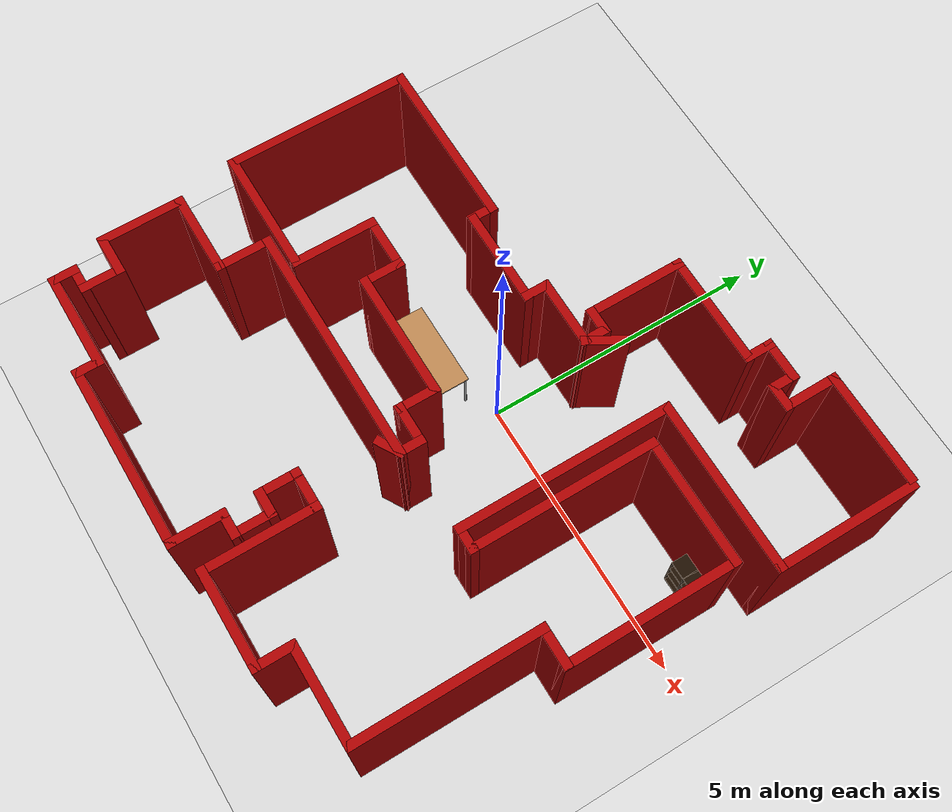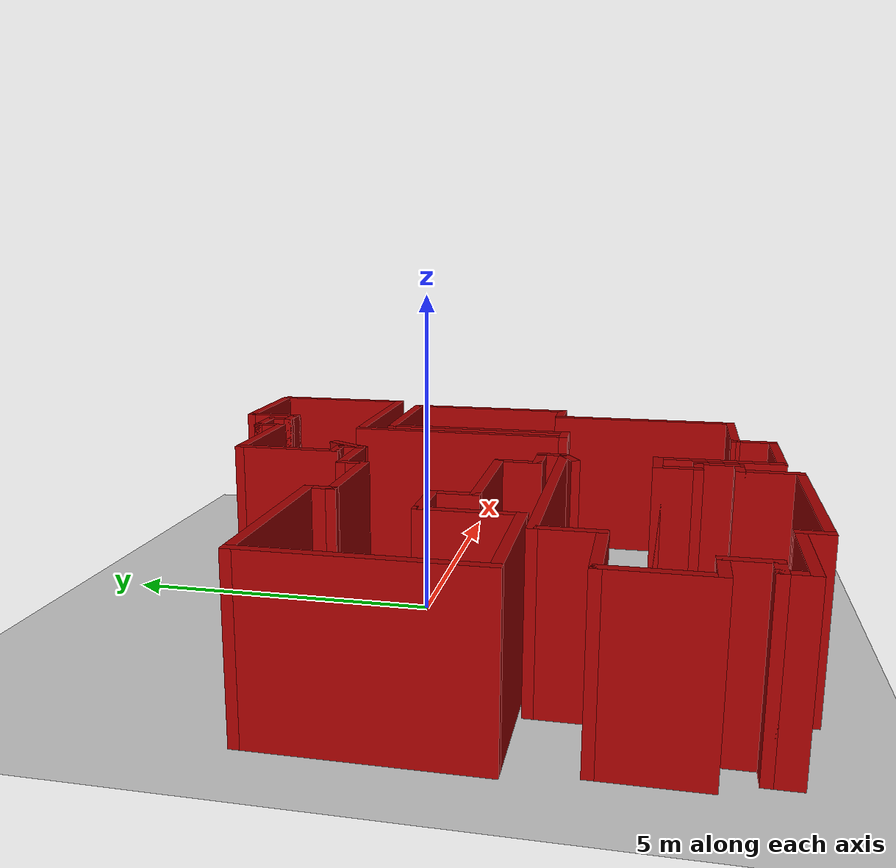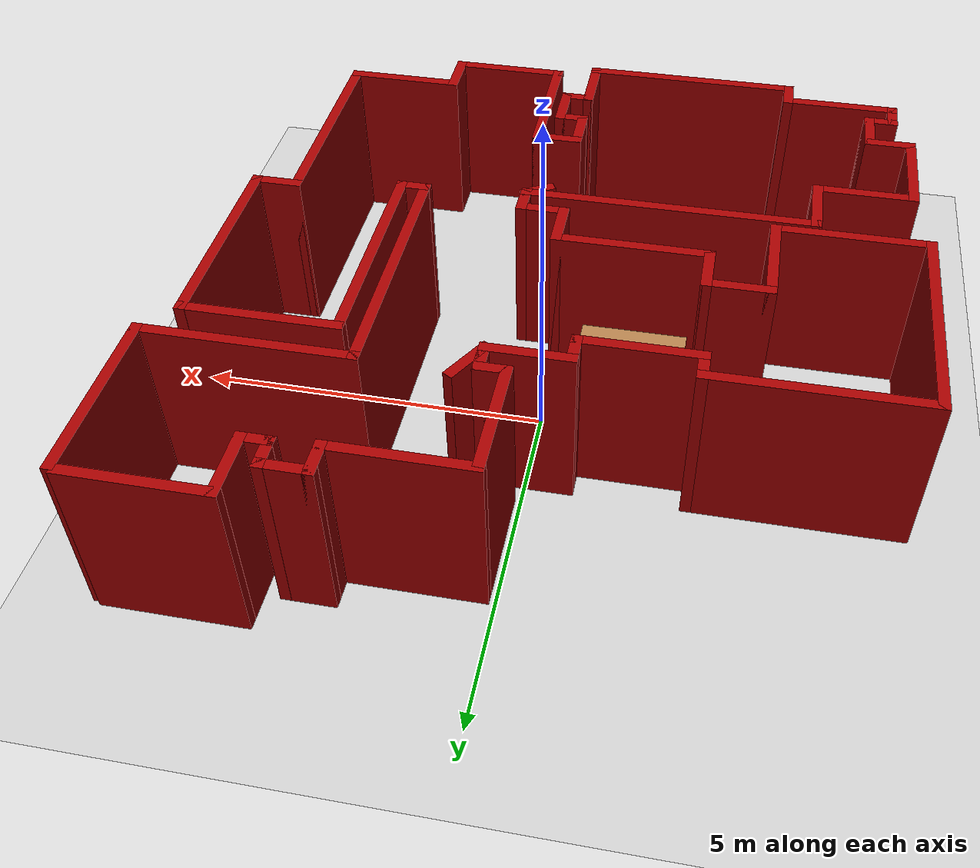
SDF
<sdf version="1.6">
 <world name="default">
  <light name="sun" type="directional">
   <pose>0 0 10 0 -0 0</pose>
   <diffuse>0.8 0.8 0.8 1</diffuse>
   <specular>0.2 0.2 0.2 1</specular>
   <attenuation>
    <range>1000</range>
    <constant>0.9</constant>
    <linear>0.01</linear>
    <quadratic>0.001</quadratic>
   </attenuation>
   <direction>-0.5 0.1 -0.9</direction>
  </light>
  <model name="ground_plane">
   <static>1</static>
   <link name="link">
    <collision name="collision">
     <geometry><plane><normal>0 0 1</normal><size>100 100</size></plane></geometry>
     <surface>
      <contact><collide_bitmask>65535</collide_bitmask></contact>
      <friction><ode><mu>100</mu><mu2>50</mu2></ode></friction>
     </surface>
    </collision>
    <visual name="visual">
     <cast_shadows>0</cast_shadows>
     <geometry><plane><normal>0 0 1</normal><size>100 100</size></plane></geometry>
     <material>
      <script><uri>file://media/materials/scripts/gazebo.material</uri><name>Gazebo/Grey</name></script>
     </material>
    </visual>
   </link>
  </model>
  <gravity>0 0 -9.8</gravity>
  <magnetic_field>6e-06 2.3e-05 -4.2e-05</magnetic_field>
  <atmosphere type="adiabatic"/>
  <physics name="default_physics" default="0" type="ode">
   <max_step_size>0.001</max_step_size>
   <real_time_factor>1</real_time_factor>
   <real_time_update_rate>1000</real_time_update_rate>
  </physics>
  <scene><ambient>0.4 0.4 0.4 1</ambient><background>0.7 0.7 0.7 1</background><shadows>1</shadows></scene>
  <audio><device>default</device></audio>
  <spherical_coordinates>
   <surface_model>EARTH_WGS84</surface_model>
   <latitude_deg>0</latitude_deg>
   <longitude_deg>0</longitude_deg>
   <elevation>0</elevation>
   <heading_deg>0</heading_deg>
  </spherical_coordinates>
  <model name="map_99">
   <pose>-0.07009 -0.765283 0 0 -0 0</pose>
   <link name="Wall_0">
    <collision name="Wall_0_Collision">
     <geometry><box><size>2 0.15 2.5</size></box></geometry>
     <pose>0 0 1.25 0 -0 0</pose>
    </collision>
    <visual name="Wall_0_Visual">
     <pose>0 0 1.25 0 -0 0</pose>
     <geometry><box><size>2 0.15 2.5</size></box></geometry>
     <material>
      <script><uri>file://media/materials/scripts/gazebo.material</uri><name>Gazebo/Grey</name></script>
      <ambient>0.643137 0 0 1</ambient>
     </material>
     <meta><layer>0</layer></meta>
    </visual>
    <pose>3.95 4.82313 0 0 -0 3.14159</pose>
   </link>
   <link name="Wall_1">
    <collision name="Wall_1_Collision">
     <geometry><box><size>1 0.15 2.5</size></box></geometry>
     <pose>0 0 1.25 0 -0 0</pose>
    </collision>
    <visual name="Wall_1_Visual">
     <pose>0 0 1.25 0 -0 0</pose>
     <geometry><box><size>1 0.15 2.5</size></box></geometry>
     <material>
      <script><uri>file://media/materials/scripts/gazebo.material</uri><name>Gazebo/Grey</name></script>
      <ambient>0.643137 0 0 1</ambient>
     </material>
     <meta><layer>0</layer></meta>
    </visual>
    <pose>3.025 4.39813 0 0 -0 -1.5708</pose>
   </link>
   <link name="Wall_10">
    <collision name="Wall_10_Collision">
     <geometry><box><size>2 0.15 2.5</size></box></geometry>
     <pose>0 0 1.25 0 -0 0</pose>
    </collision>
    <visual name="Wall_10_Visual">
     <pose>0 0 1.25 0 -0 0</pose>
     <geometry><box><size>2 0.15 2.5</size></box></geometry>
     <material>
      <script><uri>file://media/materials/scripts/gazebo.material</uri><name>Gazebo/Grey</name></script>
      <ambient>0.643137 0 0 1</ambient>
     </material>
     <meta><layer>0</layer></meta>
    </visual>
    <pose>1.15 3.92687 0 0 -0 3.14159</pose>
   </link>
   <link name="Wall_11">
    <collision name="Wall_11_Collision">
     <geometry><box><size>1.75 0.15 2.5</size></box></geometry>
     <pose>0 0 1.25 0 -0 0</pose>
    </collision>
    <visual name="Wall_11_Visual">
     <pose>0 0 1.25 0 -0 0</pose>
     <geometry><box><size>1.75 0.15 2.5</size></box></geometry>
     <material>
      <script><uri>file://media/materials/scripts/gazebo.material</uri><name>Gazebo/Grey</name></script>
      <ambient>0.643137 0 0 1</ambient>
     </material>
     <meta><layer>0</layer></meta>
    </visual>
    <pose>0.225 3.12687 0 0 -0 -1.5708</pose>
   </link>
   <link name="Wall_12">
    <collision name="Wall_12_Collision">
     <geometry><box><size>0.5 0.15 2.5</size></box></geometry>
     <pose>0 0 1.25 0 -0 0</pose>
    </collision>
    <visual name="Wall_12_Visual">
     <pose>0 0 1.25 0 -0 0</pose>
     <geometry><box><size>0.5 0.15 2.5</size></box></geometry>
     <material>
      <script><uri>file://media/materials/scripts/gazebo.material</uri><name>Gazebo/Grey</name></script>
      <ambient>0.643137 0 0 1</ambient>
     </material>
     <meta><layer>0</layer></meta>
    </visual>
    <pose>0.4 2.32687 0 0 -0 0</pose>
   </link>
   <link name="Wall_15">
    <collision name="Wall_15_Collision">
     <geometry><box><size>0.5 0.15 2.5</size></box></geometry>
     <pose>0 0 1.25 0 -0 0</pose>
    </collision>
    <visual name="Wall_15_Visual">
     <pose>0 0 1.25 0 -0 0</pose>
     <geometry><box><size>0.5 0.15 2.5</size></box></geometry>
     <material>
      <script><uri>file://media/materials/scripts/gazebo.material</uri><name>Gazebo/Grey</name></script>
      <ambient>0.643137 0 0 1</ambient>
     </material>
     <meta><layer>0</layer></meta>
    </visual>
    <pose>0.575 2.15187 0 0 -0 -1.5708</pose>
   </link>
   <link name="Wall_16">
    <collision name="Wall_16_Collision">
     <geometry><box><size>1.25 0.15 2.5</size></box></geometry>
     <pose>0 0 1.25 0 -0 0</pose>
    </collision>
    <visual name="Wall_16_Visual">
     <pose>0 0 1.25 0 -0 0</pose>
     <geometry><box><size>1.25 0.15 2.5</size></box></geometry>
     <material>
      <script><uri>file://media/materials/scripts/gazebo.material</uri><name>Gazebo/Grey</name></script>
      <ambient>0.643137 0 0 1</ambient>
     </material>
     <meta><layer>0</layer></meta>
    </visual>
    <pose>0.025 1.97687 0 0 -0 3.14159</pose>
   </link>
   <link name="Wall_17">
    <collision name="Wall_17_Collision">
     <geometry><box><size>0.5 0.15 2.5</size></box></geometry>
     <pose>0 0 1.25 0 -0 0</pose>
    </collision>
    <visual name="Wall_17_Visual">
     <pose>0 0 1.25 0 -0 0</pose>
     <geometry><box><size>0.5 0.15 2.5</size></box></geometry>
     <material>
      <script><uri>file://media/materials/scripts/gazebo.material</uri><name>Gazebo/Grey</name></script>
      <ambient>0.643137 0 0 1</ambient>
     </material>
     <meta><layer>0</layer></meta>
    </visual>
    <pose>-0.525 1.80187 0 0 -0 -1.5708</pose>
   </link>
   <link name="Wall_18">
    <collision name="Wall_18_Collision">
     <geometry><box><size>1.75 0.15 2.5</size></box></geometry>
     <pose>0 0 1.25 0 -0 0</pose>
    </collision>
    <visual name="Wall_18_Visual">
     <pose>0 0 1.25 0 -0 0</pose>
     <geometry><box><size>1.75 0.15 2.5</size></box></geometry>
     <material>
      <script><uri>file://media/materials/scripts/gazebo.material</uri><name>Gazebo/Grey</name></script>
      <ambient>0.643137 0 0 1</ambient>
     </material>
     <meta><layer>0</layer></meta>
    </visual>
    <pose>-1.325 1.62687 0 0 -0 3.14159</pose>
   </link>
   <link name="Wall_19">
    <collision name="Wall_19_Collision">
     <geometry><box><size>0.5 0.15 2.5</size></box></geometry>
     <pose>0 0 1.25 0 -0 0</pose>
    </collision>
    <visual name="Wall_19_Visual">
     <pose>0 0 1.25 0 -0 0</pose>
     <geometry><box><size>0.5 0.15 2.5</size></box></geometry>
     <material>
      <script><uri>file://media/materials/scripts/gazebo.material</uri><name>Gazebo/Grey</name></script>
      <ambient>0.643137 0 0 1</ambient>
     </material>
     <meta><layer>0</layer></meta>
    </visual>
    <pose>-2.125 1.80187 0 0 -0 1.5708</pose>
   </link>
   <link name="Wall_2">
    <collision name="Wall_2_Collision">
     <geometry><box><size>0.5 0.15 2.5</size></box></geometry>
     <pose>0 0 1.25 0 -0 0</pose>
    </collision>
    <visual name="Wall_2_Visual">
     <pose>0 0 1.25 0 -0 0</pose>
     <geometry><box><size>0.5 0.15 2.5</size></box></geometry>
     <material>
      <script><uri>file://media/materials/scripts/gazebo.material</uri><name>Gazebo/Grey</name></script>
      <ambient>0.643137 0 0 1</ambient>
     </material>
     <meta><layer>0</layer></meta>
    </visual>
    <pose>2.85 3.97313 0 0 -0 3.14159</pose>
   </link>
   <link name="Wall_20">
    <collision name="Wall_20_Collision">
     <geometry><box><size>3 0.15 2.5</size></box></geometry>
     <pose>0 0 1.25 0 -0 0</pose>
    </collision>
    <visual name="Wall_20_Visual">
     <pose>0 0 1.25 0 -0 0</pose>
     <geometry><box><size>3 0.15 2.5</size></box></geometry>
     <material>
      <script><uri>file://media/materials/scripts/gazebo.material</uri><name>Gazebo/Grey</name></script>
      <ambient>0.643137 0 0 1</ambient>
     </material>
     <meta><layer>0</layer></meta>
    </visual>
    <pose>-3.55 1.97687 0 0 -0 3.14159</pose>
   </link>
   <link name="Wall_21">
    <collision name="Wall_21_Collision">
     <geometry><box><size>3.25 0.15 2.5</size></box></geometry>
     <pose>0 0 1.25 0 -0 0</pose>
    </collision>
    <visual name="Wall_21_Visual">
     <pose>0 0 1.25 0 -0 0</pose>
     <geometry><box><size>3.25 0.15 2.5</size></box></geometry>
     <material>
      <script><uri>file://media/materials/scripts/gazebo.material</uri><name>Gazebo/Grey</name></script>
      <ambient>0.643137 0 0 1</ambient>
     </material>
     <meta><layer>0</layer></meta>
    </visual>
    <pose>-4.975 0.426869 0 0 -0 -1.5708</pose>
   </link>
   <link name="Wall_22">
    <collision name="Wall_22_Collision">
     <geometry><box><size>2.25 0.15 2.5</size></box></geometry>
     <pose>0 0 1.25 0 -0 0</pose>
    </collision>
    <visual name="Wall_22_Visual">
     <pose>0 0 1.25 0 -0 0</pose>
     <geometry><box><size>2.25 0.15 2.5</size></box></geometry>
     <material>
      <script><uri>file://media/materials/scripts/gazebo.material</uri><name>Gazebo/Grey</name></script>
      <ambient>0.643137 0 0 1</ambient>
     </material>
     <meta><layer>0</layer></meta>
    </visual>
    <pose>-3.925 -1.12313 0 0 -0 0</pose>
   </link>
   <link name="Wall_23">
    <collision name="Wall_23_Collision">
     <geometry><box><size>1.5 0.15 2.5</size></box></geometry>
     <pose>0 0 1.25 0 -0 0</pose>
    </collision>
    <visual name="Wall_23_Visual">
     <pose>0 0 1.25 0 -0 0</pose>
     <geometry><box><size>1.5 0.15 2.5</size></box></geometry>
     <material>
      <script><uri>file://media/materials/scripts/gazebo.material</uri><name>Gazebo/Grey</name></script>
      <ambient>0.643137 0 0 1</ambient>
     </material>
     <meta><layer>0</layer></meta>
    </visual>
    <pose>-2.875 -0.448131 0 0 -0 1.5708</pose>
   </link>
   <link name="Wall_24">
    <collision name="Wall_24_Collision">
     <geometry><box><size>1 0.15 2.5</size></box></geometry>
     <pose>0 0 1.25 0 -0 0</pose>
    </collision>
    <visual name="Wall_24_Visual">
     <pose>0 0 1.25 0 -0 0</pose>
     <geometry><box><size>1 0.15 2.5</size></box></geometry>
     <material>
      <script><uri>file://media/materials/scripts/gazebo.material</uri><name>Gazebo/Grey</name></script>
      <ambient>0.643137 0 0 1</ambient>
     </material>
     <meta><layer>0</layer></meta>
    </visual>
    <pose>-2.45 0.226869 0 0 -0 0</pose>
   </link>
   <link name="Wall_25">
    <collision name="Wall_25_Collision">
     <geometry><box><size>0.75 0.15 2.5</size></box></geometry>
     <pose>0 0 1.25 0 -0 0</pose>
    </collision>
    <visual name="Wall_25_Visual">
     <pose>0 0 1.25 0 -0 0</pose>
     <geometry><box><size>0.75 0.15 2.5</size></box></geometry>
     <material>
      <script><uri>file://media/materials/scripts/gazebo.material</uri><name>Gazebo/Grey</name></script>
      <ambient>0.643137 0 0 1</ambient>
     </material>
     <meta><layer>0</layer></meta>
    </visual>
    <pose>-2.025 -0.073131 0 0 -0 -1.5708</pose>
   </link>
   <link name="Wall_26">
    <collision name="Wall_26_Collision">
     <geometry><box><size>2.25 0.15 2.5</size></box></geometry>
     <pose>0 0 1.25 0 -0 0</pose>
    </collision>
    <visual name="Wall_26_Visual">
     <pose>0 0 1.25 0 -0 0</pose>
     <geometry><box><size>2.25 0.15 2.5</size></box></geometry>
     <material>
      <script><uri>file://media/materials/scripts/gazebo.material</uri><name>Gazebo/Grey</name></script>
      <ambient>0.643137 0 0 1</ambient>
     </material>
     <meta><layer>0</layer></meta>
    </visual>
    <pose>-0.975 -0.373131 0 0 -0 0</pose>
   </link>
   <link name="Wall_27">
    <collision name="Wall_27_Collision">
     <geometry><box><size>0.75 0.15 2.5</size></box></geometry>
     <pose>0 0 1.25 0 -0 0</pose>
    </collision>
    <visual name="Wall_27_Visual">
     <pose>0 0 1.25 0 -0 0</pose>
     <geometry><box><size>0.75 0.15 2.5</size></box></geometry>
     <material>
      <script><uri>file://media/materials/scripts/gazebo.material</uri><name>Gazebo/Grey</name></script>
      <ambient>0.643137 0 0 1</ambient>
     </material>
     <meta><layer>0</layer></meta>
    </visual>
    <pose>0.075 -0.673131 0 0 -0 -1.5708</pose>
   </link>
   <link name="Wall_28">
    <collision name="Wall_28_Collision">
     <geometry><box><size>0.75 0.15 2.5</size></box></geometry>
     <pose>0 0 1.25 0 -0 0</pose>
    </collision>
    <visual name="Wall_28_Visual">
     <pose>0 0 1.25 0 -0 0</pose>
     <geometry><box><size>0.75 0.15 2.5</size></box></geometry>
     <material>
      <script><uri>file://media/materials/scripts/gazebo.material</uri><name>Gazebo/Grey</name></script>
      <ambient>0.643137 0 0 1</ambient>
     </material>
     <meta><layer>0</layer></meta>
    </visual>
    <pose>0.375 -0.973131 0 0 -0 0</pose>
   </link>
   <link name="Wall_29">
    <collision name="Wall_29_Collision">
     <geometry><box><size>0.5 0.15 2.5</size></box></geometry>
     <pose>0 0 1.25 0 -0 0</pose>
    </collision>
    <visual name="Wall_29_Visual">
     <pose>0 0 1.25 0 -0 0</pose>
     <geometry><box><size>0.5 0.15 2.5</size></box></geometry>
     <material>
      <script><uri>file://media/materials/scripts/gazebo.material</uri><name>Gazebo/Grey</name></script>
      <ambient>0.643137 0 0 1</ambient>
     </material>
     <meta><layer>0</layer></meta>
    </visual>
    <pose>0.675 -1.14813 0 0 -0 -1.5708</pose>
   </link>
   <link name="Wall_3">
    <collision name="Wall_3_Collision">
     <geometry><box><size>0.5 0.15 2.5</size></box></geometry>
     <pose>0 0 1.25 0 -0 0</pose>
    </collision>
    <visual name="Wall_3_Visual">
     <pose>0 0 1.25 0 -0 0</pose>
     <geometry><box><size>0.5 0.15 2.5</size></box></geometry>
     <material>
      <script><uri>file://media/materials/scripts/gazebo.material</uri><name>Gazebo/Grey</name></script>
      <ambient>0.643137 0 0 1</ambient>
     </material>
     <meta><layer>0</layer></meta>
    </visual>
    <pose>2.675 4.14813 0 0 -0 1.5708</pose>
   </link>
   <link name="Wall_30">
    <collision name="Wall_30_Collision">
     <geometry><box><size>4.25 0.15 2.5</size></box></geometry>
     <pose>0 0 1.25 0 -0 0</pose>
    </collision>
    <visual name="Wall_30_Visual">
     <pose>0 0 1.25 0 -0 0</pose>
     <geometry><box><size>4.25 0.15 2.5</size></box></geometry>
     <material>
      <script><uri>file://media/materials/scripts/gazebo.material</uri><name>Gazebo/Grey</name></script>
      <ambient>0.643137 0 0 1</ambient>
     </material>
     <meta><layer>0</layer></meta>
    </visual>
    <pose>-1.375 -1.32313 0 0 -0 3.14159</pose>
   </link>
   <link name="Wall_31">
    <collision name="Wall_31_Collision">
     <geometry><box><size>1 0.15 2.5</size></box></geometry>
     <pose>0 0 1.25 0 -0 0</pose>
    </collision>
    <visual name="Wall_31_Visual">
     <pose>0 0 1.25 0 -0 0</pose>
     <geometry><box><size>1 0.15 2.5</size></box></geometry>
     <material>
      <script><uri>file://media/materials/scripts/gazebo.material</uri><name>Gazebo/Grey</name></script>
      <ambient>0.643137 0 0 1</ambient>
     </material>
     <meta><layer>0</layer></meta>
    </visual>
    <pose>-3.425 -1.74813 0 0 -0 -1.5708</pose>
   </link>
   <link name="Wall_32">
    <collision name="Wall_32_Collision">
     <geometry><box><size>1.5 0.15 2.5</size></box></geometry>
     <pose>0 0 1.25 0 -0 0</pose>
    </collision>
    <visual name="Wall_32_Visual">
     <pose>0 0 1.25 0 -0 0</pose>
     <geometry><box><size>1.5 0.15 2.5</size></box></geometry>
     <material>
      <script><uri>file://media/materials/scripts/gazebo.material</uri><name>Gazebo/Grey</name></script>
      <ambient>0.643137 0 0 1</ambient>
     </material>
     <meta><layer>0</layer></meta>
    </visual>
    <pose>-4.1 -2.17313 0 0 -0 3.14159</pose>
   </link>
   <link name="Wall_33">
    <collision name="Wall_33_Collision">
     <geometry><box><size>1.5 0.15 2.5</size></box></geometry>
     <pose>0 0 1.25 0 -0 0</pose>
    </collision>
    <visual name="Wall_33_Visual">
     <pose>0 0 1.25 0 -0 0</pose>
     <geometry><box><size>1.5 0.15 2.5</size></box></geometry>
     <material>
      <script><uri>file://media/materials/scripts/gazebo.material</uri><name>Gazebo/Grey</name></script>
      <ambient>0.643137 0 0 1</ambient>
     </material>
     <meta><layer>0</layer></meta>
    </visual>
    <pose>-4.775 -2.84813 0 0 -0 -1.5708</pose>
   </link>
   <link name="Wall_34">
    <collision name="Wall_34_Collision">
     <geometry><box><size>0.75 0.15 2.5</size></box></geometry>
     <pose>0 0 1.25 0 -0 0</pose>
    </collision>
    <visual name="Wall_34_Visual">
     <pose>0 0 1.25 0 -0 0</pose>
     <geometry><box><size>0.75 0.15 2.5</size></box></geometry>
     <material>
      <script><uri>file://media/materials/scripts/gazebo.material</uri><name>Gazebo/Grey</name></script>
      <ambient>0.643137 0 0 1</ambient>
     </material>
     <meta><layer>0</layer></meta>
    </visual>
    <pose>-4.475 -3.52313 0 0 -0 0</pose>
   </link>
   <link name="Wall_35">
    <collision name="Wall_35_Collision">
     <geometry><box><size>0.75 0.15 2.5</size></box></geometry>
     <pose>0 0 1.25 0 -0 0</pose>
    </collision>
    <visual name="Wall_35_Visual">
     <pose>0 0 1.25 0 -0 0</pose>
     <geometry><box><size>0.75 0.15 2.5</size></box></geometry>
     <material>
      <script><uri>file://media/materials/scripts/gazebo.material</uri><name>Gazebo/Grey</name></script>
      <ambient>0.643137 0 0 1</ambient>
     </material>
     <meta><layer>0</layer></meta>
    </visual>
    <pose>-4.175 -3.82313 0 0 -0 -1.5708</pose>
   </link>
   <link name="Wall_36">
    <collision name="Wall_36_Collision">
     <geometry><box><size>0.5 0.15 2.5</size></box></geometry>
     <pose>0 0 1.25 0 -0 0</pose>
    </collision>
    <visual name="Wall_36_Visual">
     <pose>0 0 1.25 0 -0 0</pose>
     <geometry><box><size>0.5 0.15 2.5</size></box></geometry>
     <material>
      <script><uri>file://media/materials/scripts/gazebo.material</uri><name>Gazebo/Grey</name></script>
      <ambient>0.643137 0 0 1</ambient>
     </material>
     <meta><layer>0</layer></meta>
    </visual>
    <pose>-4.35 -4.12313 0 0 -0 3.14159</pose>
   </link>
   <link name="Wall_37">
    <collision name="Wall_37_Collision">
     <geometry><box><size>0.5 0.15 2.5</size></box></geometry>
     <pose>0 0 1.25 0 -0 0</pose>
    </collision>
    <visual name="Wall_37_Visual">
     <pose>0 0 1.25 0 -0 0</pose>
     <geometry><box><size>0.5 0.15 2.5</size></box></geometry>
     <material>
      <script><uri>file://media/materials/scripts/gazebo.material</uri><name>Gazebo/Grey</name></script>
      <ambient>0.643137 0 0 1</ambient>
     </material>
     <meta><layer>0</layer></meta>
    </visual>
    <pose>-4.525 -4.29813 0 0 -0 -1.5708</pose>
   </link>
   <link name="Wall_38">
    <collision name="Wall_38_Collision">
     <geometry><box><size>1.75 0.15 2.5</size></box></geometry>
     <pose>0 0 1.25 0 -0 0</pose>
    </collision>
    <visual name="Wall_38_Visual">
     <pose>0 0 1.25 0 -0 0</pose>
     <geometry><box><size>1.75 0.15 2.5</size></box></geometry>
     <material>
      <script><uri>file://media/materials/scripts/gazebo.material</uri><name>Gazebo/Grey</name></script>
      <ambient>0.643137 0 0 1</ambient>
     </material>
     <meta><layer>0</layer></meta>
    </visual>
    <pose>-3.725 -4.47313 0 0 -0 0</pose>
   </link>
   <link name="Wall_39">
    <collision name="Wall_39_Collision">
     <geometry><box><size>0.5 0.15 2.5</size></box></geometry>
     <pose>0 0 1.25 0 -0 0</pose>
    </collision>
    <visual name="Wall_39_Visual">
     <pose>0 0 1.25 0 -0 0</pose>
     <geometry><box><size>0.5 0.15 2.5</size></box></geometry>
     <material>
      <script><uri>file://media/materials/scripts/gazebo.material</uri><name>Gazebo/Grey</name></script>
      <ambient>0.643137 0 0 1</ambient>
     </material>
     <meta><layer>0</layer></meta>
    </visual>
    <pose>-2.925 -4.64813 0 0 -0 -1.5708</pose>
   </link>
   <link name="Wall_4">
    <collision name="Wall_4_Collision">
     <geometry><box><size>0.75 0.15 2.5</size></box></geometry>
     <pose>0 0 1.25 0 -0 0</pose>
    </collision>
    <visual name="Wall_4_Visual">
     <pose>0 0 1.25 0 -0 0</pose>
     <geometry><box><size>0.75 0.15 2.5</size></box></geometry>
     <material>
      <script><uri>file://media/materials/scripts/gazebo.material</uri><name>Gazebo/Grey</name></script>
      <ambient>0.643137 0 0 1</ambient>
     </material>
     <meta><layer>0</layer></meta>
    </visual>
    <pose>2.375 4.32313 0 0 -0 3.14159</pose>
   </link>
   <link name="Wall_40">
    <collision name="Wall_40_Collision">
     <geometry><box><size>3.25 0.15 2.5</size></box></geometry>
     <pose>0 0 1.25 0 -0 0</pose>
    </collision>
    <visual name="Wall_40_Visual">
     <pose>0 0 1.25 0 -0 0</pose>
     <geometry><box><size>3.25 0.15 2.5</size></box></geometry>
     <material>
      <script><uri>file://media/materials/scripts/gazebo.material</uri><name>Gazebo/Grey</name></script>
      <ambient>0.643137 0 0 1</ambient>
     </material>
     <meta><layer>0</layer></meta>
    </visual>
    <pose>-1.375 -4.82313 0 0 -0 0</pose>
   </link>
   <link name="Wall_41">
    <collision name="Wall_41_Collision">
     <geometry><box><size>1 0.15 2.5</size></box></geometry>
     <pose>0 0 1.25 0 -0 0</pose>
    </collision>
    <visual name="Wall_41_Visual">
     <pose>0 0 1.25 0 -0 0</pose>
     <geometry><box><size>1 0.15 2.5</size></box></geometry>
     <material>
      <script><uri>file://media/materials/scripts/gazebo.material</uri><name>Gazebo/Grey</name></script>
      <ambient>0.643137 0 0 1</ambient>
     </material>
     <meta><layer>0</layer></meta>
    </visual>
    <pose>0.175 -4.39813 0 0 -0 1.5708</pose>
   </link>
   <link name="Wall_42">
    <collision name="Wall_42_Collision">
     <geometry><box><size>0.5 0.15 2.5</size></box></geometry>
     <pose>0 0 1.25 0 -0 0</pose>
    </collision>
    <visual name="Wall_42_Visual">
     <pose>0 0 1.25 0 -0 0</pose>
     <geometry><box><size>0.5 0.15 2.5</size></box></geometry>
     <material>
      <script><uri>file://media/materials/scripts/gazebo.material</uri><name>Gazebo/Grey</name></script>
      <ambient>0.643137 0 0 1</ambient>
     </material>
     <meta><layer>0</layer></meta>
    </visual>
    <pose>0.35 -3.97313 0 0 -0 0</pose>
   </link>
   <link name="Wall_43">
    <collision name="Wall_43_Collision">
     <geometry><box><size>0.75 0.15 2.5</size></box></geometry>
     <pose>0 0 1.25 0 -0 0</pose>
    </collision>
    <visual name="Wall_43_Visual">
     <pose>0 0 1.25 0 -0 0</pose>
     <geometry><box><size>0.75 0.15 2.5</size></box></geometry>
     <material>
      <script><uri>file://media/materials/scripts/gazebo.material</uri><name>Gazebo/Grey</name></script>
      <ambient>0.643137 0 0 1</ambient>
     </material>
     <meta><layer>0</layer></meta>
    </visual>
    <pose>0.525 -3.67313 0 0 -0 1.5708</pose>
   </link>
   <link name="Wall_44">
    <collision name="Wall_44_Collision">
     <geometry><box><size>0.5 0.15 2.5</size></box></geometry>
     <pose>0 0 1.25 0 -0 0</pose>
    </collision>
    <visual name="Wall_44_Visual">
     <pose>0 0 1.25 0 -0 0</pose>
     <geometry><box><size>0.5 0.15 2.5</size></box></geometry>
     <material>
      <script><uri>file://media/materials/scripts/gazebo.material</uri><name>Gazebo/Grey</name></script>
      <ambient>0.643137 0 0 1</ambient>
     </material>
     <meta><layer>0</layer></meta>
    </visual>
    <pose>0.35 -3.37313 0 0 -0 3.14159</pose>
   </link>
   <link name="Wall_45">
    <collision name="Wall_45_Collision">
     <geometry><box><size>0.75 0.15 2.5</size></box></geometry>
     <pose>0 0 1.25 0 -0 0</pose>
    </collision>
    <visual name="Wall_45_Visual">
     <pose>0 0 1.25 0 -0 0</pose>
     <geometry><box><size>0.75 0.15 2.5</size></box></geometry>
     <material>
      <script><uri>file://media/materials/scripts/gazebo.material</uri><name>Gazebo/Grey</name></script>
      <ambient>0.643137 0 0 1</ambient>
     </material>
     <meta><layer>0</layer></meta>
    </visual>
    <pose>0.175 -3.07313 0 0 -0 1.5708</pose>
   </link>
   <link name="Wall_46">
    <collision name="Wall_46_Collision">
     <geometry><box><size>0.75 0.15 2.5</size></box></geometry>
     <pose>0 0 1.25 0 -0 0</pose>
    </collision>
    <visual name="Wall_46_Visual">
     <pose>0 0 1.25 0 -0 0</pose>
     <geometry><box><size>0.75 0.15 2.5</size></box></geometry>
     <material>
      <script><uri>file://media/materials/scripts/gazebo.material</uri><name>Gazebo/Grey</name></script>
      <ambient>0.643137 0 0 1</ambient>
     </material>
     <meta><layer>0</layer></meta>
    </visual>
    <pose>0.475 -2.77313 0 0 -0 0</pose>
   </link>
   <link name="Wall_47">
    <collision name="Wall_47_Collision">
     <geometry><box><size>2 0.15 2.5</size></box></geometry>
     <pose>0 0 1.25 0 -0 0</pose>
    </collision>
    <visual name="Wall_47_Visual">
     <pose>0 0 1.25 0 -0 0</pose>
     <geometry><box><size>2 0.15 2.5</size></box></geometry>
     <material>
      <script><uri>file://media/materials/scripts/gazebo.material</uri><name>Gazebo/Grey</name></script>
      <ambient>0.643137 0 0 1</ambient>
     </material>
     <meta><layer>0</layer></meta>
    </visual>
    <pose>0.775 -3.69813 0 0 -0 -1.5708</pose>
   </link>
   <link name="Wall_48">
    <collision name="Wall_48_Collision">
     <geometry><box><size>1.75 0.15 2.5</size></box></geometry>
     <pose>0 0 1.25 0 -0 0</pose>
    </collision>
    <visual name="Wall_48_Visual">
     <pose>0 0 1.25 0 -0 0</pose>
     <geometry><box><size>1.75 0.15 2.5</size></box></geometry>
     <material>
      <script><uri>file://media/materials/scripts/gazebo.material</uri><name>Gazebo/Grey</name></script>
      <ambient>0.643137 0 0 1</ambient>
     </material>
     <meta><layer>0</layer></meta>
    </visual>
    <pose>1.575 -4.62313 0 0 -0 0</pose>
   </link>
   <link name="Wall_49">
    <collision name="Wall_49_Collision">
     <geometry><box><size>0.75 0.15 2.5</size></box></geometry>
     <pose>0 0 1.25 0 -0 0</pose>
    </collision>
    <visual name="Wall_49_Visual">
     <pose>0 0 1.25 0 -0 0</pose>
     <geometry><box><size>0.75 0.15 2.5</size></box></geometry>
     <material>
      <script><uri>file://media/materials/scripts/gazebo.material</uri><name>Gazebo/Grey</name></script>
      <ambient>0.643137 0 0 1</ambient>
     </material>
     <meta><layer>0</layer></meta>
    </visual>
    <pose>2.375 -4.32313 0 0 -0 1.5708</pose>
   </link>
   <link name="Wall_5">
    <collision name="Wall_5_Collision">
     <geometry><box><size>0.546261 0.15 2.5</size></box></geometry>
     <pose>0 0 1.25 0 -0 0</pose>
    </collision>
    <visual name="Wall_5_Visual">
     <pose>0 0 1.25 0 -0 0</pose>
     <geometry><box><size>0.546261 0.15 2.5</size></box></geometry>
     <material>
      <script><uri>file://media/materials/scripts/gazebo.material</uri><name>Gazebo/Grey</name></script>
      <ambient>0.643137 0 0 1</ambient>
     </material>
     <meta><layer>0</layer></meta>
    </visual>
    <pose>2.075 4.125 0 0 -0 -1.5708</pose>
   </link>
   <link name="Wall_53">
    <collision name="Wall_53_Collision">
     <geometry><box><size>1.75 0.15 2.5</size></box></geometry>
     <pose>0 0 1.25 0 -0 0</pose>
    </collision>
    <visual name="Wall_53_Visual">
     <pose>0 0 1.25 0 -0 0</pose>
     <geometry><box><size>1.75 0.15 2.5</size></box></geometry>
     <material>
      <script><uri>file://media/materials/scripts/gazebo.material</uri><name>Gazebo/Grey</name></script>
      <ambient>0.643137 0 0 1</ambient>
     </material>
     <meta><layer>0</layer></meta>
    </visual>
    <pose>3.175 -4.02313 0 0 -0 0</pose>
   </link>
   <link name="Wall_54">
    <collision name="Wall_54_Collision">
     <geometry><box><size>3.25 0.15 2.5</size></box></geometry>
     <pose>0 0 1.25 0 -0 0</pose>
    </collision>
    <visual name="Wall_54_Visual">
     <pose>0 0 1.25 0 -0 0</pose>
     <geometry><box><size>3.25 0.15 2.5</size></box></geometry>
     <material>
      <script><uri>file://media/materials/scripts/gazebo.material</uri><name>Gazebo/Grey</name></script>
      <ambient>0.643137 0 0 1</ambient>
     </material>
     <meta><layer>0</layer></meta>
    </visual>
    <pose>3.975 -2.47313 0 0 -0 1.5708</pose>
   </link>
   <link name="Wall_55">
    <collision name="Wall_55_Collision">
     <geometry><box><size>0.75 0.15 2.5</size></box></geometry>
     <pose>0 0 1.25 0 -0 0</pose>
    </collision>
    <visual name="Wall_55_Visual">
     <pose>0 0 1.25 0 -0 0</pose>
     <geometry><box><size>0.75 0.15 2.5</size></box></geometry>
     <material>
      <script><uri>file://media/materials/scripts/gazebo.material</uri><name>Gazebo/Grey</name></script>
      <ambient>0.643137 0 0 1</ambient>
     </material>
     <meta><layer>0</layer></meta>
    </visual>
    <pose>4.275 -0.923131 0 0 -0 0</pose>
   </link>
   <link name="Wall_56">
    <collision name="Wall_56_Collision">
     <geometry><box><size>3 0.15 2.5</size></box></geometry>
     <pose>0 0 1.25 0 -0 0</pose>
    </collision>
    <visual name="Wall_56_Visual">
     <pose>0 0 1.25 0 -0 0</pose>
     <geometry><box><size>3 0.15 2.5</size></box></geometry>
     <material>
      <script><uri>file://media/materials/scripts/gazebo.material</uri><name>Gazebo/Grey</name></script>
      <ambient>0.643137 0 0 1</ambient>
     </material>
     <meta><layer>0</layer></meta>
    </visual>
    <pose>4.575 0.501869 0 0 -0 1.5708</pose>
   </link>
   <link name="Wall_57">
    <collision name="Wall_57_Collision">
     <geometry><box><size>2.25 0.15 2.5</size></box></geometry>
     <pose>0 0 1.25 0 -0 0</pose>
    </collision>
    <visual name="Wall_57_Visual">
     <pose>0 0 1.25 0 -0 0</pose>
     <geometry><box><size>2.25 0.15 2.5</size></box></geometry>
     <material>
      <script><uri>file://media/materials/scripts/gazebo.material</uri><name>Gazebo/Grey</name></script>
      <ambient>0.643137 0 0 1</ambient>
     </material>
     <meta><layer>0</layer></meta>
    </visual>
    <pose>3.525 1.92687 0 0 -0 3.14159</pose>
   </link>
   <link name="Wall_58">
    <collision name="Wall_58_Collision">
     <geometry><box><size>3.25 0.15 2.5</size></box></geometry>
     <pose>0 0 1.25 0 -0 0</pose>
    </collision>
    <visual name="Wall_58_Visual">
     <pose>0 0 1.25 0 -0 0</pose>
     <geometry><box><size>3.25 0.15 2.5</size></box></geometry>
     <material>
      <script><uri>file://media/materials/scripts/gazebo.material</uri><name>Gazebo/Grey</name></script>
      <ambient>0.643137 0 0 1</ambient>
     </material>
     <meta><layer>0</layer></meta>
    </visual>
    <pose>2.475 0.376869 0 0 -0 -1.5708</pose>
   </link>
   <link name="Wall_59">
    <collision name="Wall_59_Collision">
     <geometry><box><size>0.5 0.15 2.5</size></box></geometry>
     <pose>0 0 1.25 0 -0 0</pose>
    </collision>
    <visual name="Wall_59_Visual">
     <pose>0 0 1.25 0 -0 0</pose>
     <geometry><box><size>0.5 0.15 2.5</size></box></geometry>
     <material>
      <script><uri>file://media/materials/scripts/gazebo.material</uri><name>Gazebo/Grey</name></script>
      <ambient>0.643137 0 0 1</ambient>
     </material>
     <meta><layer>0</layer></meta>
    </visual>
    <pose>2.3 -1.17313 0 0 -0 3.14159</pose>
   </link>
   <link name="Wall_60">
    <collision name="Wall_60_Collision">
     <geometry><box><size>3.75 0.15 2.5</size></box></geometry>
     <pose>0 0 1.25 0 -0 0</pose>
    </collision>
    <visual name="Wall_60_Visual">
     <pose>0 0 1.25 0 -0 0</pose>
     <geometry><box><size>3.75 0.15 2.5</size></box></geometry>
     <material>
      <script><uri>file://media/materials/scripts/gazebo.material</uri><name>Gazebo/Grey</name></script>
      <ambient>0.643137 0 0 1</ambient>
     </material>
     <meta><layer>0</layer></meta>
    </visual>
    <pose>2.125 0.626869 0 0 -0 1.5708</pose>
   </link>
   <link name="Wall_61">
    <collision name="Wall_61_Collision">
     <geometry><box><size>3 0.15 2.5</size></box></geometry>
     <pose>0 0 1.25 0 -0 0</pose>
    </collision>
    <visual name="Wall_61_Visual">
     <pose>0 0 1.25 0 -0 0</pose>
     <geometry><box><size>3 0.15 2.5</size></box></geometry>
     <material>
      <script><uri>file://media/materials/scripts/gazebo.material</uri><name>Gazebo/Grey</name></script>
      <ambient>0.643137 0 0 1</ambient>
     </material>
     <meta><layer>0</layer></meta>
    </visual>
    <pose>3.55 2.42687 0 0 -0 0</pose>
   </link>
   <link name="Wall_62">
    <collision name="Wall_62_Collision">
     <geometry><box><size>2.5 0.15 2.5</size></box></geometry>
     <pose>0 0 1.25 0 -0 0</pose>
    </collision>
    <visual name="Wall_62_Visual">
     <pose>0 0 1.25 0 -0 0</pose>
     <geometry><box><size>2.5 0.15 2.5</size></box></geometry>
     <material>
      <script><uri>file://media/materials/scripts/gazebo.material</uri><name>Gazebo/Grey</name></script>
      <ambient>0.643137 0 0 1</ambient>
     </material>
     <meta><layer>0</layer></meta>
    </visual>
    <pose>4.975 3.60187 0 0 -0 1.5708</pose>
   </link>
   <link name="Wall_64">
    <collision name="Wall_64_Collision">
     <geometry><box><size>0.75 0.15 2.5</size></box></geometry>
     <pose>0 0 1.25 0 -0 0</pose>
    </collision>
    <visual name="Wall_64_Visual">
     <pose>0 0 1.25 0 -0 0</pose>
     <geometry><box><size>0.75 0.15 2.5</size></box></geometry>
     <material>
      <script><uri>file://media/materials/scripts/gazebo.material</uri><name>Gazebo/Grey</name></script>
      <ambient>0.643137 0 0 1</ambient>
     </material>
     <meta><layer>0</layer></meta>
    </visual>
    <pose>0.725 2.23668 0 0 -0 1.0472</pose>
   </link>
   <link name="Wall_66">
    <collision name="Wall_66_Collision">
     <geometry><box><size>0.5 0.15 2.5</size></box></geometry>
     <pose>0 0 1.25 0 -0 0</pose>
    </collision>
    <visual name="Wall_66_Visual">
     <pose>0 0 1.25 0 -0 0</pose>
     <geometry><box><size>0.5 0.15 2.5</size></box></geometry>
     <material>
      <script><uri>file://media/materials/scripts/gazebo.material</uri><name>Gazebo/Grey</name></script>
      <ambient>0.643137 0 0 1</ambient>
     </material>
     <meta><layer>0</layer></meta>
    </visual>
    <pose>0.523446 -1.41063 0 0 -0 -2.61799</pose>
   </link>
   <static>1</static>
  </model>
  <model name="6_Cube_StorageE">
   <link name="Wall_0">
    <pose>0 0 0.01 0 -0 0</pose>
    <inertial>
     <mass>1.6201</mass>
     <inertia><ixx>0.0119</ixx><iyy>0.0631</iyy><izz>0.0513</izz><ixy>0</ixy><ixz>0</ixz><iyz>0</iyz></inertia>
    </inertial>
    <collision name="Wall_0_Collision"><geometry><box><size>0.616 0.296 0.02</size></box></geometry></collision>
    <visual name="Wall_0_Visual">
     <geometry><box><size>0.616 0.296 0.02</size></box></geometry>
     <material>
      <script><uri>file://media/materials/scripts/gazebo.material</uri><name>Gazebo/Grey</name></script>
      <ambient>0.105882 0.0509804 0 1</ambient>
     </material>
    </visual>
   </link>
   <joint name="0_2" type="fixed">
    <pose>-0.308 0 0 0 -0 0</pose>
    <parent>Wall_2</parent>
    <child>Wall_0</child>
    <axis>
     <xyz>1 0 0</xyz>
     <use_parent_model_frame>0</use_parent_model_frame>
     <limit><lower>-1e+16</lower><upper>1e+16</upper></limit>
    </axis>
   </joint>
   <joint name="0_12" type="fixed">
    <parent>Wall_12</parent>
    <child>Wall_0</child>
    <axis>
     <xyz>0 0 1</xyz>
     <use_parent_model_frame>0</use_parent_model_frame>
     <limit><lower>-1e+16</lower><upper>1e+16</upper></limit>
    </axis>
   </joint>
   <joint name="0_4" type="fixed">
    <pose>0.308 0 0 0 -0 0</pose>
    <parent>Wall_4</parent>
    <child>Wall_0</child>
    <axis>
     <xyz>1 0 0</xyz>
     <use_parent_model_frame>0</use_parent_model_frame>
     <limit><lower>-1e+16</lower><upper>1e+16</upper></limit>
    </axis>
   </joint>
   <link name="Wall_10">
    <pose>0 0 0.61 0 -0 0</pose>
    <inertial>
     <mass>1.6201</mass>
     <inertia><ixx>0.0119</ixx><iyy>0.0631</iyy><izz>0.0513</izz><ixy>0</ixy><ixz>0</ixz><iyz>0</iyz></inertia>
    </inertial>
    <collision name="Wall_10_Collision"><geometry><box><size>0.616 0.296 0.02</size></box></geometry></collision>
    <visual name="Wall_10_Visual">
     <geometry><box><size>0.616 0.296 0.02</size></box></geometry>
     <material>
      <script><uri>file://media/materials/scripts/gazebo.material</uri><name>Gazebo/Grey</name></script>
      <ambient>0.105882 0.0509804 0 1</ambient>
     </material>
    </visual>
   </link>
   <joint name="10_2" type="fixed">
    <pose>-0.308 0 0 0 -0 0</pose>
    <parent>Wall_2</parent>
    <child>Wall_10</child>
    <axis>
     <xyz>1 0 0</xyz>
     <use_parent_model_frame>0</use_parent_model_frame>
     <limit><lower>-1e+16</lower><upper>1e+16</upper></limit>
    </axis>
   </joint>
   <joint name="10_12" type="fixed">
    <parent>Wall_12</parent>
    <child>Wall_10</child>
    <axis>
     <xyz>0 0 1</xyz>
     <use_parent_model_frame>0</use_parent_model_frame>
     <limit><lower>-1e+16</lower><upper>1e+16</upper></limit>
    </axis>
   </joint>
   <joint name="10_4" type="fixed">
    <pose>0.308 0 0 0 -0 0</pose>
    <parent>Wall_4</parent>
    <child>Wall_10</child>
    <axis>
     <xyz>1 0 0</xyz>
     <use_parent_model_frame>0</use_parent_model_frame>
     <limit><lower>-1e+16</lower><upper>1e+16</upper></limit>
    </axis>
   </joint>
   <link name="Wall_12">
    <pose>0 0 0.4575 0 -0 0</pose>
    <inertial>
     <mass>2.4065</mass>
     <inertia><ixx>0.0177</ixx><iyy>0.1855</iyy><izz>0.168</izz><ixy>0</ixy><ixz>0</ixz><iyz>0</iyz></inertia>
    </inertial>
    <collision name="Wall_12_Collision"><geometry><box><size>0.02 0.296 0.915</size></box></geometry></collision>
    <visual name="Wall_12_Visual">
     <geometry><box><size>0.02 0.296 0.915</size></box></geometry>
     <material>
      <script><uri>file://media/materials/scripts/gazebo.material</uri><name>Gazebo/Grey</name></script>
      <ambient>0.105882 0.0509804 0 1</ambient>
     </material>
    </visual>
   </link>
   <link name="Wall_2">
    <pose>-0.298 0 0.4575 0 -0 0</pose>
    <inertial>
     <mass>2.4065</mass>
     <inertia><ixx>0.0177</ixx><iyy>0.1855</iyy><izz>0.168</izz><ixy>0</ixy><ixz>0</ixz><iyz>0</iyz></inertia>
    </inertial>
    <collision name="Wall_2_Collision"><geometry><box><size>0.02 0.296 0.915</size></box></geometry></collision>
    <visual name="Wall_2_Visual">
     <geometry><box><size>0.02 0.296 0.915</size></box></geometry>
     <material>
      <script><uri>file://media/materials/scripts/gazebo.material</uri><name>Gazebo/Grey</name></script>
      <ambient>0.105882 0.0509804 0 1</ambient>
     </material>
    </visual>
   </link>
   <link name="Wall_4">
    <pose>0.298 0 0.4575 0 -0 0</pose>
    <inertial>
     <mass>2.4065</mass>
     <inertia><ixx>0.0177</ixx><iyy>0.1855</iyy><izz>0.168</izz><ixy>0</ixy><ixz>0</ixz><iyz>0</iyz></inertia>
    </inertial>
    <collision name="Wall_4_Collision"><geometry><box><size>0.02 0.296 0.915</size></box></geometry></collision>
    <visual name="Wall_4_Visual">
     <geometry><box><size>0.02 0.296 0.915</size></box></geometry>
     <material>
      <script><uri>file://media/materials/scripts/gazebo.material</uri><name>Gazebo/Grey</name></script>
      <ambient>0.105882 0.0509804 0 1</ambient>
     </material>
    </visual>
   </link>
   <link name="Wall_6">
    <pose>0 0 0.905 0 -0 0</pose>
    <inertial>
     <mass>1.6201</mass>
     <inertia><ixx>0.0119</ixx><iyy>0.0631</iyy><izz>0.0513</izz><ixy>0</ixy><ixz>0</ixz><iyz>0</iyz></inertia>
    </inertial>
    <collision name="Wall_6_Collision"><geometry><box><size>0.616 0.296 0.02</size></box></geometry></collision>
    <visual name="Wall_6_Visual">
     <geometry><box><size>0.616 0.296 0.02</size></box></geometry>
     <material>
      <script><uri>file://media/materials/scripts/gazebo.material</uri><name>Gazebo/Grey</name></script>
      <ambient>0.105882 0.0509804 0 1</ambient>
     </material>
    </visual>
   </link>
   <joint name="6_2" type="fixed">
    <pose>-0.308 0 0 0 -0 0</pose>
    <parent>Wall_2</parent>
    <child>Wall_6</child>
    <axis>
     <xyz>2 0 0</xyz>
     <use_parent_model_frame>0</use_parent_model_frame>
     <limit><lower>-1e+16</lower><upper>1e+16</upper></limit>
    </axis>
   </joint>
   <joint name="6_12" type="fixed">
    <parent>Wall_12</parent>
    <child>Wall_6</child>
    <axis>
     <xyz>0 0 1</xyz>
     <use_parent_model_frame>0</use_parent_model_frame>
     <limit><lower>-1e+16</lower><upper>1e+16</upper></limit>
    </axis>
   </joint>
   <joint name="6_4" type="fixed">
    <pose>0.308 0 0 0 -0 0</pose>
    <parent>Wall_4</parent>
    <child>Wall_6</child>
    <axis>
     <xyz>1 0 0</xyz>
     <use_parent_model_frame>0</use_parent_model_frame>
     <limit><lower>-1e+16</lower><upper>1e+16</upper></limit>
    </axis>
   </joint>
   <link name="Wall_8">
    <pose>0 0 0.305 0 -0 0</pose>
    <inertial>
     <mass>1.6201</mass>
     <inertia><ixx>0.0119</ixx><iyy>0.0631</iyy><izz>0.0513</izz><ixy>0</ixy><ixz>0</ixz><iyz>0</iyz></inertia>
    </inertial>
    <collision name="Wall_8_Collision"><geometry><box><size>0.616 0.296 0.02</size></box></geometry></collision>
    <visual name="Wall_8_Visual">
     <geometry><box><size>0.616 0.296 0.02</size></box></geometry>
     <material>
      <script><uri>file://media/materials/scripts/gazebo.material</uri><name>Gazebo/Grey</name></script>
      <ambient>0.105882 0.0509804 0 1</ambient>
     </material>
    </visual>
   </link>
   <joint name="8_2" type="fixed">
    <pose>-0.308 0 0 0 -0 0</pose>
    <parent>Wall_2</parent>
    <child>Wall_8</child>
    <axis>
     <xyz>1 0 0</xyz>
     <use_parent_model_frame>0</use_parent_model_frame>
     <limit><lower>-1e+16</lower><upper>1e+16</upper></limit>
    </axis>
   </joint>
   <joint name="8_12" type="fixed">
    <parent>Wall_12</parent>
    <child>Wall_8</child>
    <axis>
     <xyz>0 0 1</xyz>
     <use_parent_model_frame>0</use_parent_model_frame>
     <limit><lower>-1e+16</lower><upper>1e+16</upper></limit>
    </axis>
   </joint>
   <joint name="8_4" type="fixed">
    <pose>0.308 0 0 0 -0 0</pose>
    <parent>Wall_4</parent>
    <child>Wall_8</child>
    <axis>
     <xyz>1 0 0</xyz>
     <use_parent_model_frame>0</use_parent_model_frame>
     <limit><lower>-1e+16</lower><upper>1e+16</upper></limit>
    </axis>
   </joint>
   <static>1</static>
   <pose>4.10254 0.952562 0 0 -0 0</pose>
  </model>
  <model name="table">
   <static>1</static>
   <link name="link">
    <collision name="surface">
     <pose>0 0 1 0 -0 0</pose>
     <geometry><box><size>1.5 0.8 0.03</size></box></geometry>
     <surface><friction><ode><mu>0.6</mu><mu2>0.6</mu2></ode></friction></surface>
    </collision>
    <visual name="visual1">
     <pose>0 0 1 0 -0 0</pose>
     <geometry><box><size>1.5 0.8 0.03</size></box></geometry>
     <material>
      <script><uri>file://media/materials/scripts/gazebo.material</uri><name>Gazebo/Wood</name></script>
     </material>
    </visual>
    <collision name="front_left_leg">
     <pose>0.68 0.38 0.5 0 -0 0</pose>
     <geometry><cylinder><radius>0.02</radius><length>1</length></cylinder></geometry>
    </collision>
    <visual name="front_left_leg">
     <pose>0.68 0.38 0.5 0 -0 0</pose>
     <geometry><cylinder><radius>0.02</radius><length>1</length></cylinder></geometry>
     <material>
      <script><uri>file://media/materials/scripts/gazebo.material</uri><name>Gazebo/Grey</name></script>
     </material>
    </visual>
    <collision name="front_right_leg">
     <pose>0.68 -0.38 0.5 0 -0 0</pose>
     <geometry><cylinder><radius>0.02</radius><length>1</length></cylinder></geometry>
    </collision>
    <visual name="front_right_leg">
     <pose>0.68 -0.38 0.5 0 -0 0</pose>
     <geometry><cylinder><radius>0.02</radius><length>1</length></cylinder></geometry>
     <material>
      <script><uri>file://media/materials/scripts/gazebo.material</uri><name>Gazebo/Grey</name></script>
     </material>
    </visual>
    <collision name="back_right_leg">
     <pose>-0.68 -0.38 0.5 0 -0 0</pose>
     <geometry><cylinder><radius>0.02</radius><length>1</length></cylinder></geometry>
    </collision>
    <visual name="back_right_leg">
     <pose>-0.68 -0.38 0.5 0 -0 0</pose>
     <geometry><cylinder><radius>0.02</radius><length>1</length></cylinder></geometry>
     <material>
      <script><uri>file://media/materials/scripts/gazebo.material</uri><name>Gazebo/Grey</name></script>
     </material>
    </visual>
    <collision name="back_left_leg">
     <pose>-0.68 0.38 0.5 0 -0 0</pose>
     <geometry><cylinder><radius>0.02</radius><length>1</length></cylinder></geometry>
    </collision>
    <visual name="back_left_leg">
     <pose>-0.68 0.38 0.5 0 -0 0</pose>
     <geometry><cylinder><radius>0.02</radius><length>1</length></cylinder></geometry>
     <material>
      <script><uri>file://media/materials/scripts/gazebo.material</uri><name>Gazebo/Grey</name></script>
     </material>
    </visual>
   </link>
   <pose>-1.16669 -0.692963 0 0 -0 0</pose>
  </model>
 </world>
</sdf>
